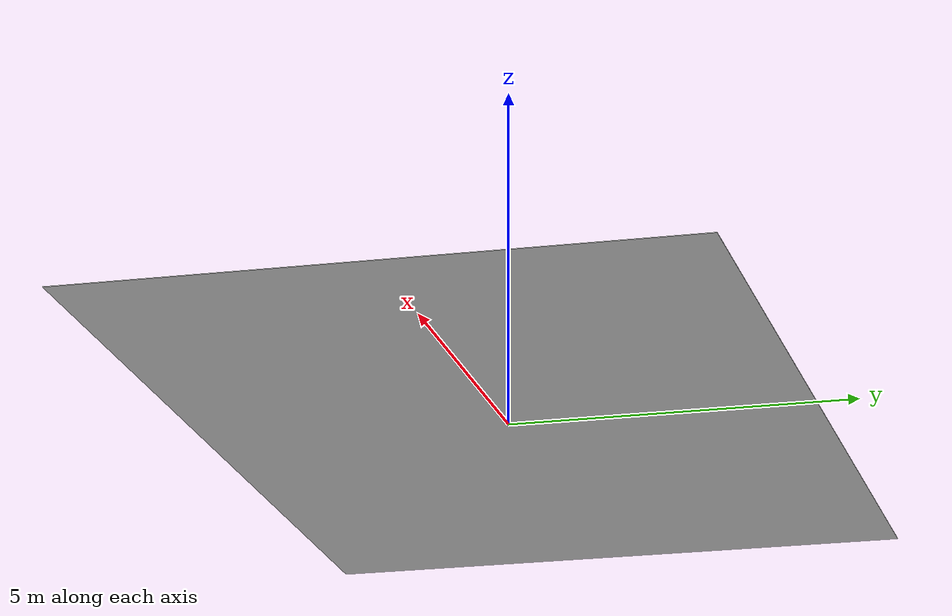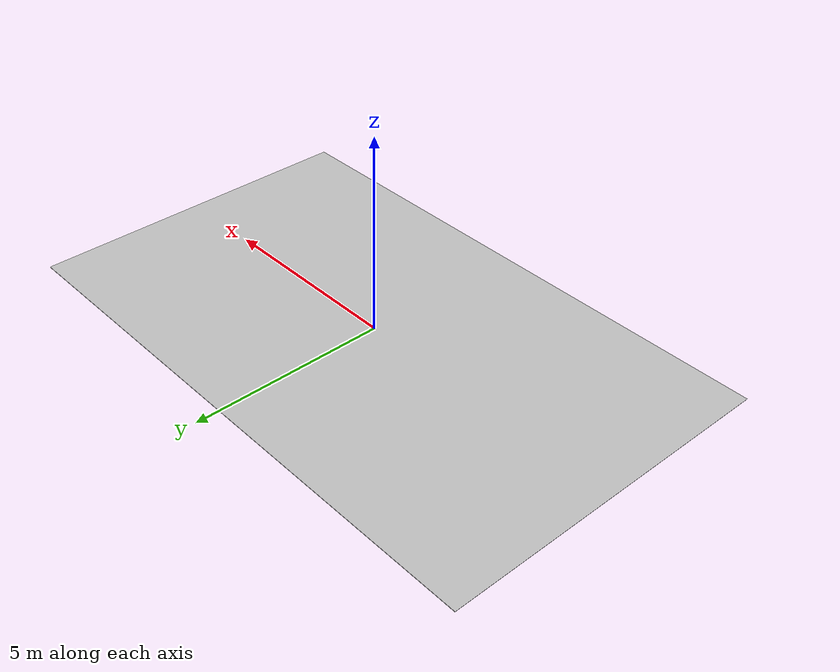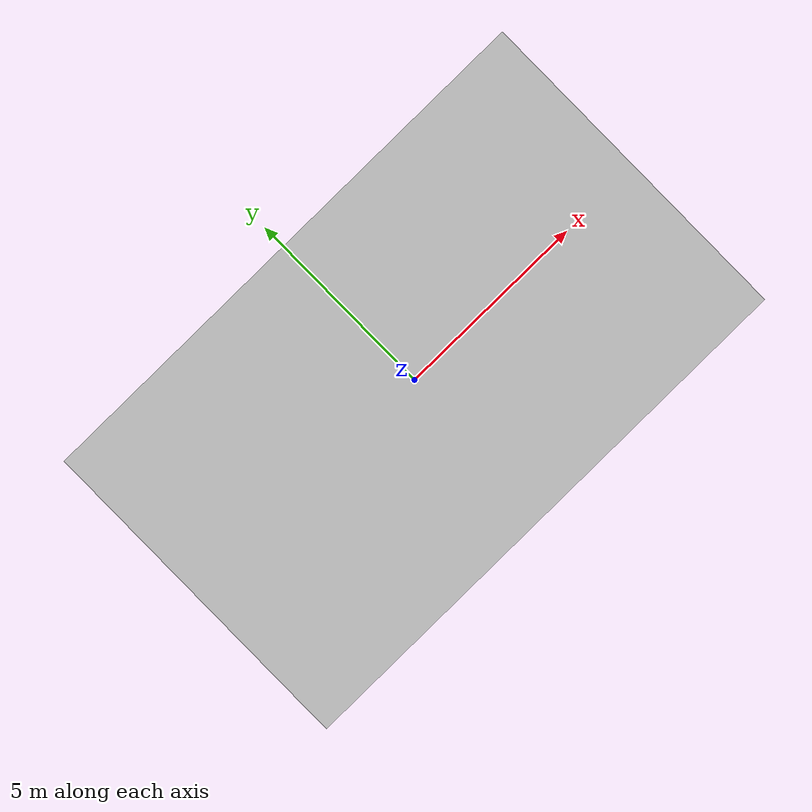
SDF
<?xml version="1.0" ?>
<sdf version="1.6">
  <model name="warehouse">
    <link name="link">
      <inertial>
        <mass>1000</mass>
		<inertia>
          <ixx>1200083.33</ixx>
          <ixy>0</ixy>
          <ixz>0</ixz>
          <iyy>8333416.66</iyy>
          <iyz>0</iyz>
          <izz>2033333.33</izz>
        </inertia>
      </inertial>
      <collision name="collision">
        <geometry>
          <mesh>
            <uri>model://warehouse/meshes/warehouse.dae</uri>
            <scale>1.2 1.1 1</scale>
          </mesh>
        </geometry>
        <surface>
          <friction>
            <ode>
              <mu>10000000000</mu>
              <mu2>1000000000</mu2>
              <fdir1>0 0 0</fdir1>
              <slip1>0</slip1>
              <slip2>0</slip2>
            </ode>
          </friction>
        </surface>
      </collision>
      <visual name="visual">
	    <geometry>
          <mesh>
            <uri>model://warehouse/meshes/warehouse.dae</uri>
            <scale>1.2 1.1 1</scale>
          </mesh>
        </geometry>
      <meta> <layer> 1 </layer></meta>
</visual>
    </link>
<static>1</static>
  </model>
</sdf>
